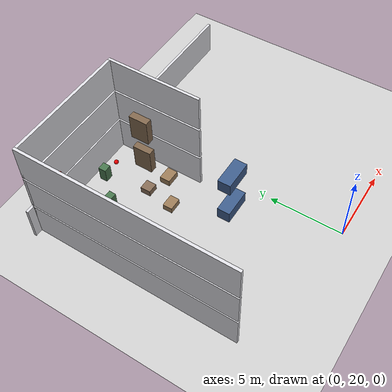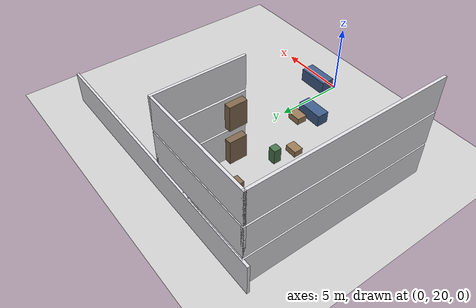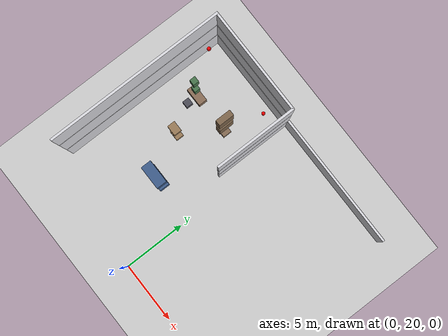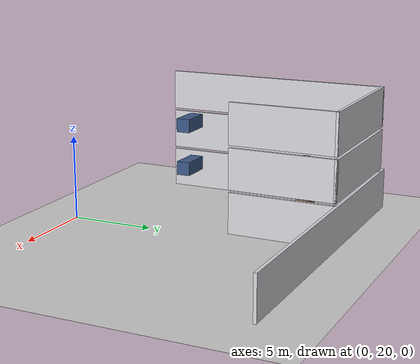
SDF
<sdf version="1.7">
 <world name="generated_world">
  <include><uri>model://sun</uri></include>
  <include><uri>model://ground_plane</uri></include>
  <model name="generated_building">
   <static>true</static>
   <link name="exterior_north_floor_0">
    <pose>0.0000 35.9100 1.2250 0.0000 0.0000 0.0000</pose>
    <collision name="exterior_north_floor_0_collision">
     <geometry><box><size>20.0000 0.1800 2.4500</size></box></geometry>
    </collision>
    <visual name="exterior_north_floor_0_visual">
     <geometry><box><size>20.0000 0.1800 2.4500</size></box></geometry>
     <material><ambient>0.86 0.86 0.88 1</ambient><diffuse>0.86 0.86 0.88 1</diffuse></material>
    </visual>
    <gravity>false</gravity>
   </link>
   <link name="floor_0_room_2_corridor_wall_upper">
    <pose>-1.1900 32.7025 1.2250 0.0000 0.0000 0.0000</pose>
    <collision name="floor_0_room_2_corridor_wall_upper_collision">
     <geometry><box><size>0.1800 6.4150 2.4500</size></box></geometry>
    </collision>
    <visual name="floor_0_room_2_corridor_wall_upper_visual">
     <geometry><box><size>0.1800 6.4150 2.4500</size></box></geometry>
     <material><ambient>0.86 0.86 0.88 1</ambient><diffuse>0.86 0.86 0.88 1</diffuse></material>
    </visual>
    <gravity>false</gravity>
   </link>
   <link name="floor_0_room_2_west_wall">
    <pose>-9.4100 28.8950 1.2250 0.0000 0.0000 0.0000</pose>
    <collision name="floor_0_room_2_west_wall_collision">
     <geometry><box><size>0.1800 14.0300 2.4500</size></box></geometry>
    </collision>
    <visual name="floor_0_room_2_west_wall_visual">
     <geometry><box><size>0.1800 14.0300 2.4500</size></box></geometry>
     <material><ambient>0.86 0.86 0.88 1</ambient><diffuse>0.86 0.86 0.88 1</diffuse></material>
    </visual>
    <gravity>false</gravity>
   </link>
   <link name="floor_0_room_2_north_wall">
    <pose>-5.3000 35.8200 1.2250 0.0000 0.0000 0.0000</pose>
    <collision name="floor_0_room_2_north_wall_collision">
     <geometry><box><size>8.4000 0.1800 2.4500</size></box></geometry>
    </collision>
    <visual name="floor_0_room_2_north_wall_visual">
     <geometry><box><size>8.4000 0.1800 2.4500</size></box></geometry>
     <material><ambient>0.86 0.86 0.88 1</ambient><diffuse>0.86 0.86 0.88 1</diffuse></material>
    </visual>
    <gravity>false</gravity>
   </link>
   <link name="floor_0_room_2_desk">
    <pose>-7.0000 31.9525 0.4500 0.0000 0.0000 0.0000</pose>
    <collision name="floor_0_room_2_desk_collision">
     <geometry><box><size>1.5000 0.7000 0.7500</size></box></geometry>
    </collision>
    <visual name="floor_0_room_2_desk_visual">
     <geometry><box><size>1.5000 0.7000 0.7500</size></box></geometry>
     <material><ambient>0.54 0.43 0.34 1</ambient><diffuse>0.54 0.43 0.34 1</diffuse></material>
    </visual>
    <gravity>false</gravity>
   </link>
   <link name="floor_0_room_2_chair">
    <pose>-7.0000 31.0525 0.2800 0.0000 0.0000 0.0000</pose>
    <collision name="floor_0_room_2_chair_collision">
     <geometry><box><size>0.5500 0.5500 0.5500</size></box></geometry>
    </collision>
    <visual name="floor_0_room_2_chair_visual">
     <geometry><box><size>0.5500 0.5500 0.5500</size></box></geometry>
     <material><ambient>0.30 0.30 0.34 1</ambient><diffuse>0.30 0.30 0.34 1</diffuse></material>
    </visual>
    <gravity>false</gravity>
   </link>
   <link name="floor_0_room_2_side_table">
    <pose>-3.6000 31.9525 0.3200 0.0000 0.0000 0.0000</pose>
    <collision name="floor_0_room_2_side_table_collision">
     <geometry><box><size>0.7000 0.7000 0.4500</size></box></geometry>
    </collision>
    <visual name="floor_0_room_2_side_table_visual">
     <geometry><box><size>0.7000 0.7000 0.4500</size></box></geometry>
     <material><ambient>0.52 0.42 0.33 1</ambient><diffuse>0.52 0.42 0.33 1</diffuse></material>
    </visual>
    <gravity>false</gravity>
   </link>
   <link name="floor_1_room_2_corridor_wall_upper">
    <pose>-1.1900 32.7025 3.8250 0.0000 0.0000 0.0000</pose>
    <collision name="floor_1_room_2_corridor_wall_upper_collision">
     <geometry><box><size>0.1800 6.4150 2.4500</size></box></geometry>
    </collision>
    <visual name="floor_1_room_2_corridor_wall_upper_visual">
     <geometry><box><size>0.1800 6.4150 2.4500</size></box></geometry>
     <material><ambient>0.86 0.86 0.88 1</ambient><diffuse>0.86 0.86 0.88 1</diffuse></material>
    </visual>
    <gravity>false</gravity>
   </link>
   <link name="floor_1_room_2_west_wall">
    <pose>-9.4100 28.8950 3.8250 0.0000 0.0000 0.0000</pose>
    <collision name="floor_1_room_2_west_wall_collision">
     <geometry><box><size>0.1800 14.0300 2.4500</size></box></geometry>
    </collision>
    <visual name="floor_1_room_2_west_wall_visual">
     <geometry><box><size>0.1800 14.0300 2.4500</size></box></geometry>
     <material><ambient>0.86 0.86 0.88 1</ambient><diffuse>0.86 0.86 0.88 1</diffuse></material>
    </visual>
    <gravity>false</gravity>
   </link>
   <link name="floor_1_room_2_north_wall">
    <pose>-5.3000 35.8200 3.8250 0.0000 0.0000 0.0000</pose>
    <collision name="floor_1_room_2_north_wall_collision">
     <geometry><box><size>8.4000 0.1800 2.4500</size></box></geometry>
    </collision>
    <visual name="floor_1_room_2_north_wall_visual">
     <geometry><box><size>8.4000 0.1800 2.4500</size></box></geometry>
     <material><ambient>0.86 0.86 0.88 1</ambient><diffuse>0.86 0.86 0.88 1</diffuse></material>
    </visual>
    <gravity>false</gravity>
   </link>
   <link name="floor_1_room_2_sofa_b">
    <pose>-3.6000 25.8375 3.0500 0.0000 0.0000 3.1400</pose>
    <collision name="floor_1_room_2_sofa_b_collision">
     <geometry><box><size>1.8000 0.8000 0.8000</size></box></geometry>
    </collision>
    <visual name="floor_1_room_2_sofa_b_visual">
     <geometry><box><size>1.8000 0.8000 0.8000</size></box></geometry>
     <material><ambient>0.24 0.36 0.54 1</ambient><diffuse>0.24 0.36 0.54 1</diffuse></material>
    </visual>
    <gravity>false</gravity>
   </link>
   <link name="floor_1_room_2_coffee_table">
    <pose>-5.3000 28.8950 2.8500 0.0000 0.0000 0.0000</pose>
    <collision name="floor_1_room_2_coffee_table_collision">
     <geometry><box><size>0.8000 0.6000 0.4000</size></box></geometry>
    </collision>
    <visual name="floor_1_room_2_coffee_table_visual">
     <geometry><box><size>0.8000 0.6000 0.4000</size></box></geometry>
     <material><ambient>0.60 0.48 0.34 1</ambient><diffuse>0.60 0.48 0.34 1</diffuse></material>
    </visual>
    <gravity>false</gravity>
   </link>
   <link name="floor_1_room_2_bookshelf">
    <pose>-3.6000 31.9525 3.4500 0.0000 0.0000 0.0000</pose>
    <collision name="floor_1_room_2_bookshelf_collision">
     <geometry><box><size>0.4500 1.2000 1.7000</size></box></geometry>
    </collision>
    <visual name="floor_1_room_2_bookshelf_visual">
     <geometry><box><size>0.4500 1.2000 1.7000</size></box></geometry>
     <material><ambient>0.50 0.40 0.30 1</ambient><diffuse>0.50 0.40 0.30 1</diffuse></material>
    </visual>
    <gravity>false</gravity>
   </link>
   <link name="floor_1_room_2_planter">
    <pose>-7.0000 31.9525 3.0500 0.0000 0.0000 0.0000</pose>
    <collision name="floor_1_room_2_planter_collision">
     <geometry><box><size>0.4500 0.4500 0.9000</size></box></geometry>
    </collision>
    <visual name="floor_1_room_2_planter_visual">
     <geometry><box><size>0.4500 0.4500 0.9000</size></box></geometry>
     <material><ambient>0.28 0.46 0.30 1</ambient><diffuse>0.28 0.46 0.30 1</diffuse></material>
    </visual>
    <gravity>false</gravity>
   </link>
   <link name="floor_2_room_2_corridor_wall_upper">
    <pose>-1.1900 32.7025 6.4250 0.0000 0.0000 0.0000</pose>
    <collision name="floor_2_room_2_corridor_wall_upper_collision">
     <geometry><box><size>0.1800 6.4150 2.4500</size></box></geometry>
    </collision>
    <visual name="floor_2_room_2_corridor_wall_upper_visual">
     <geometry><box><size>0.1800 6.4150 2.4500</size></box></geometry>
     <material><ambient>0.86 0.86 0.88 1</ambient><diffuse>0.86 0.86 0.88 1</diffuse></material>
    </visual>
    <gravity>false</gravity>
   </link>
   <link name="floor_2_room_2_west_wall">
    <pose>-9.4100 28.8950 6.4250 0.0000 0.0000 0.0000</pose>
    <collision name="floor_2_room_2_west_wall_collision">
     <geometry><box><size>0.1800 14.0300 2.4500</size></box></geometry>
    </collision>
    <visual name="floor_2_room_2_west_wall_visual">
     <geometry><box><size>0.1800 14.0300 2.4500</size></box></geometry>
     <material><ambient>0.86 0.86 0.88 1</ambient><diffuse>0.86 0.86 0.88 1</diffuse></material>
    </visual>
    <gravity>false</gravity>
   </link>
   <link name="floor_2_room_2_north_wall">
    <pose>-5.3000 35.8200 6.4250 0.0000 0.0000 0.0000</pose>
    <collision name="floor_2_room_2_north_wall_collision">
     <geometry><box><size>8.4000 0.1800 2.4500</size></box></geometry>
    </collision>
    <visual name="floor_2_room_2_north_wall_visual">
     <geometry><box><size>8.4000 0.1800 2.4500</size></box></geometry>
     <material><ambient>0.86 0.86 0.88 1</ambient><diffuse>0.86 0.86 0.88 1</diffuse></material>
    </visual>
    <gravity>false</gravity>
   </link>
   <link name="floor_2_room_2_sofa_b">
    <pose>-3.6000 25.8375 5.6500 0.0000 0.0000 3.1400</pose>
    <collision name="floor_2_room_2_sofa_b_collision">
     <geometry><box><size>1.8000 0.8000 0.8000</size></box></geometry>
    </collision>
    <visual name="floor_2_room_2_sofa_b_visual">
     <geometry><box><size>1.8000 0.8000 0.8000</size></box></geometry>
     <material><ambient>0.24 0.36 0.54 1</ambient><diffuse>0.24 0.36 0.54 1</diffuse></material>
    </visual>
    <gravity>false</gravity>
   </link>
   <link name="floor_2_room_2_coffee_table">
    <pose>-5.3000 28.8950 5.4500 0.0000 0.0000 0.0000</pose>
    <collision name="floor_2_room_2_coffee_table_collision">
     <geometry><box><size>0.8000 0.6000 0.4000</size></box></geometry>
    </collision>
    <visual name="floor_2_room_2_coffee_table_visual">
     <geometry><box><size>0.8000 0.6000 0.4000</size></box></geometry>
     <material><ambient>0.60 0.48 0.34 1</ambient><diffuse>0.60 0.48 0.34 1</diffuse></material>
    </visual>
    <gravity>false</gravity>
   </link>
   <link name="floor_2_room_2_bookshelf">
    <pose>-3.6000 31.9525 6.0500 0.0000 0.0000 0.0000</pose>
    <collision name="floor_2_room_2_bookshelf_collision">
     <geometry><box><size>0.4500 1.2000 1.7000</size></box></geometry>
    </collision>
    <visual name="floor_2_room_2_bookshelf_visual">
     <geometry><box><size>0.4500 1.2000 1.7000</size></box></geometry>
     <material><ambient>0.50 0.40 0.30 1</ambient><diffuse>0.50 0.40 0.30 1</diffuse></material>
    </visual>
    <gravity>false</gravity>
   </link>
   <link name="floor_2_room_2_planter">
    <pose>-7.0000 31.9525 5.6500 0.0000 0.0000 0.0000</pose>
    <collision name="floor_2_room_2_planter_collision">
     <geometry><box><size>0.4500 0.4500 0.9000</size></box></geometry>
    </collision>
    <visual name="floor_2_room_2_planter_visual">
     <geometry><box><size>0.4500 0.4500 0.9000</size></box></geometry>
     <material><ambient>0.28 0.46 0.30 1</ambient><diffuse>0.28 0.46 0.30 1</diffuse></material>
    </visual>
    <gravity>false</gravity>
   </link>
  </model>
  <model name="danger_red_sphere_02">
   <static>true</static>
   <pose>-2.867144 35.109003 0.150000 0.000000 0.000000 0.000000</pose>
   <link name="link">
    <collision name="collision"><geometry><sphere><radius>0.150</radius></sphere></geometry></collision>
    <visual name="visual">
     <geometry><sphere><radius>0.150</radius></sphere></geometry>
     <material><ambient>1.0 0.0 0.0 1.0</ambient><diffuse>1.0 0.0 0.0 1.0</diffuse></material>
    </visual>
   </link>
  </model>
  <model name="danger_red_sphere_03">
   <static>true</static>
   <pose>-8.279968 34.213240 5.350000 0.000000 0.000000 0.000000</pose>
   <link name="link">
    <collision name="collision"><geometry><sphere><radius>0.150</radius></sphere></geometry></collision>
    <visual name="visual">
     <geometry><sphere><radius>0.150</radius></sphere></geometry>
     <material><ambient>1.0 0.0 0.0 1.0</ambient><diffuse>1.0 0.0 0.0 1.0</diffuse></material>
    </visual>
   </link>
  </model>
 </world>
</sdf>
